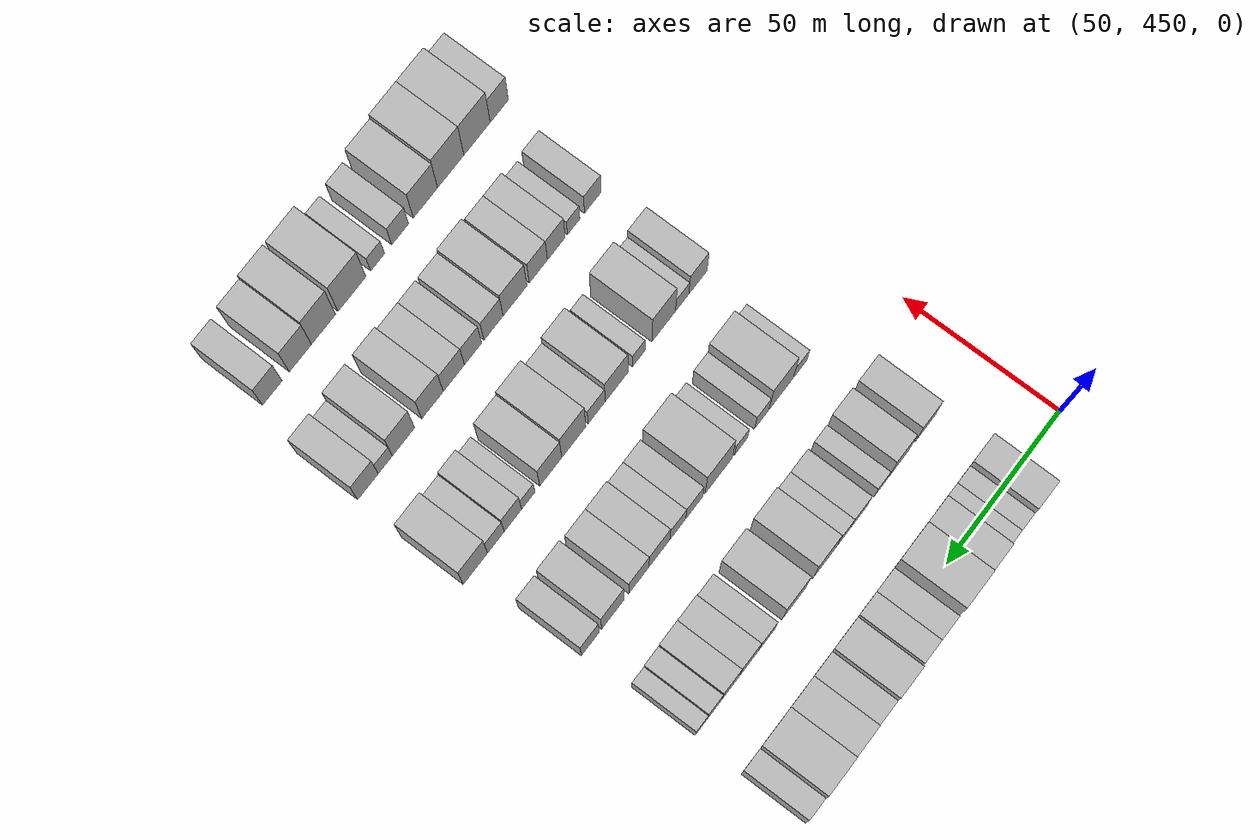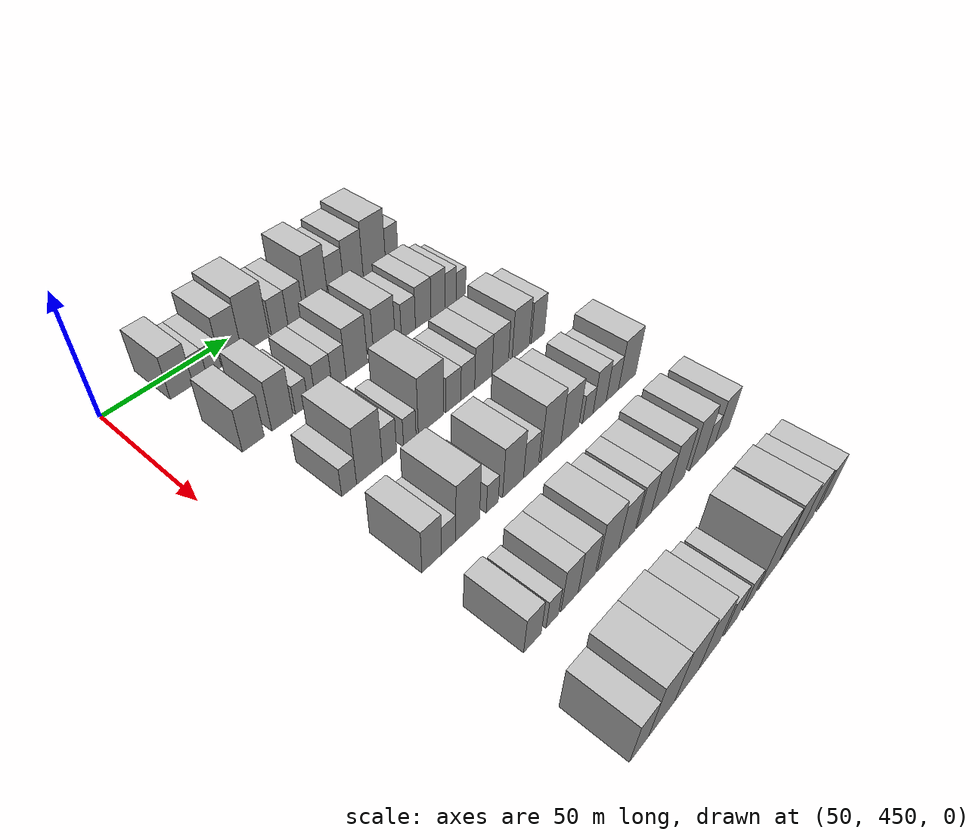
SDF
<sdf version="1.6">
 <world name="default">
  <model name="building_111">
   <static>1</static>
   <pose>50.0000 473.8093 0 0.000000 0.000000 0.000000</pose>
   <link name="link">
    <pose>0 0 9.00 0 0 0</pose>
    <collision name="collision"><geometry><box><size>20.0000 8.9700 18.0000</size></box></geometry></collision>
    <visual name="visual">
     <cast_shadows>0</cast_shadows>
     <geometry><box><size>20.0000 8.9700 18.0000</size></box></geometry>
     <material>
      <script>
       <uri>model://HANNAS_wall/materials/scripts</uri>
       <uri>model://HANNAS_wall/materials/textures</uri>
       <name>vrc/HANNAS_wall</name>
      </script>
     </material>
    </visual>
   </link>
  </model>
  <model name="building_112">
   <static>1</static>
   <pose>50.0000 481.0498 0 0.000000 0.000000 0.000000</pose>
   <link name="link">
    <pose>0 0 6.00 0 0 0</pose>
    <collision name="collision"><geometry><box><size>20.0000 5.5109 12.0000</size></box></geometry></collision>
    <visual name="visual">
     <cast_shadows>0</cast_shadows>
     <geometry><box><size>20.0000 5.5109 12.0000</size></box></geometry>
     <material>
      <script>
       <uri>model://HANNAS_wall/materials/scripts</uri>
       <uri>model://HANNAS_wall/materials/textures</uri>
       <name>vrc/HANNAS_wall</name>
      </script>
     </material>
    </visual>
   </link>
  </model>
  <model name="building_113">
   <static>1</static>
   <pose>50.0000 486.7842 0 0.000000 0.000000 0.000000</pose>
   <link name="link">
    <pose>0 0 6.00 0 0 0</pose>
    <collision name="collision"><geometry><box><size>20.0000 5.9581 12.0000</size></box></geometry></collision>
    <visual name="visual">
     <cast_shadows>0</cast_shadows>
     <geometry><box><size>20.0000 5.9581 12.0000</size></box></geometry>
     <material>
      <script>
       <uri>model://HANNAS_wall/materials/scripts</uri>
       <uri>model://HANNAS_wall/materials/textures</uri>
       <name>vrc/HANNAS_wall</name>
      </script>
     </material>
    </visual>
   </link>
  </model>
  <model name="building_114">
   <static>1</static>
   <pose>50.0000 494.1852 0 0.000000 0.000000 0.000000</pose>
   <link name="link">
    <pose>0 0 10.50 0 0 0</pose>
    <collision name="collision"><geometry><box><size>20.0000 8.8439 21.0000</size></box></geometry></collision>
    <visual name="visual">
     <cast_shadows>0</cast_shadows>
     <geometry><box><size>20.0000 8.8439 21.0000</size></box></geometry>
     <material>
      <script>
       <uri>model://HANNAS_wall/materials/scripts</uri>
       <uri>model://HANNAS_wall/materials/textures</uri>
       <name>vrc/HANNAS_wall</name>
      </script>
     </material>
    </visual>
   </link>
  </model>
  <model name="building_115">
   <static>1</static>
   <pose>50.0000 504.4781 0 0.000000 0.000000 0.000000</pose>
   <link name="link">
    <pose>0 0 12.00 0 0 0</pose>
    <collision name="collision"><geometry><box><size>20.0000 11.7419 24.0000</size></box></geometry></collision>
    <visual name="visual">
     <cast_shadows>0</cast_shadows>
     <geometry><box><size>20.0000 11.7419 24.0000</size></box></geometry>
     <material>
      <script>
       <uri>model://HANNAS_wall/materials/scripts</uri>
       <uri>model://HANNAS_wall/materials/textures</uri>
       <name>vrc/HANNAS_wall</name>
      </script>
     </material>
    </visual>
   </link>
  </model>
  <model name="building_116">
   <static>1</static>
   <pose>50.0000 515.0926 0 0.000000 0.000000 0.000000</pose>
   <link name="link">
    <pose>0 0 7.50 0 0 0</pose>
    <collision name="collision"><geometry><box><size>20.0000 7.4870 15.0000</size></box></geometry></collision>
    <visual name="visual">
     <cast_shadows>0</cast_shadows>
     <geometry><box><size>20.0000 7.4870 15.0000</size></box></geometry>
     <material>
      <script>
       <uri>model://HANNAS_wall/materials/scripts</uri>
       <uri>model://HANNAS_wall/materials/textures</uri>
       <name>vrc/HANNAS_wall</name>
      </script>
     </material>
    </visual>
   </link>
  </model>
  <model name="building_117">
   <static>1</static>
   <pose>50.0000 522.4957 0 0.000000 0.000000 0.000000</pose>
   <link name="link">
    <pose>0 0 7.50 0 0 0</pose>
    <collision name="collision"><geometry><box><size>20.0000 7.3192 15.0000</size></box></geometry></collision>
    <visual name="visual">
     <cast_shadows>0</cast_shadows>
     <geometry><box><size>20.0000 7.3192 15.0000</size></box></geometry>
     <material>
      <script>
       <uri>model://HANNAS_wall/materials/scripts</uri>
       <uri>model://HANNAS_wall/materials/textures</uri>
       <name>vrc/HANNAS_wall</name>
      </script>
     </material>
    </visual>
   </link>
  </model>
  <model name="building_118">
   <static>1</static>
   <pose>50.0000 533.0517 0 0.000000 0.000000 0.000000</pose>
   <link name="link">
    <pose>0 0 12.00 0 0 0</pose>
    <collision name="collision"><geometry><box><size>20.0000 9.7930 24.0000</size></box></geometry></collision>
    <visual name="visual">
     <cast_shadows>0</cast_shadows>
     <geometry><box><size>20.0000 9.7930 24.0000</size></box></geometry>
     <material>
      <script>
       <uri>model://HANNAS_wall/materials/scripts</uri>
       <uri>model://HANNAS_wall/materials/textures</uri>
       <name>vrc/HANNAS_wall</name>
      </script>
     </material>
    </visual>
   </link>
  </model>
  <model name="building_119">
   <static>1</static>
   <pose>50.0000 541.9042 0 0.000000 0.000000 0.000000</pose>
   <link name="link">
    <pose>0 0 9.00 0 0 0</pose>
    <collision name="collision"><geometry><box><size>20.0000 7.9119 18.0000</size></box></geometry></collision>
    <visual name="visual">
     <cast_shadows>0</cast_shadows>
     <geometry><box><size>20.0000 7.9119 18.0000</size></box></geometry>
     <material>
      <script>
       <uri>model://HANNAS_wall/materials/scripts</uri>
       <uri>model://HANNAS_wall/materials/textures</uri>
       <name>vrc/HANNAS_wall</name>
      </script>
     </material>
    </visual>
   </link>
  </model>
  <model name="building_120">
   <static>1</static>
   <pose>50.0000 550.7705 0 0.000000 0.000000 0.000000</pose>
   <link name="link">
    <pose>0 0 10.50 0 0 0</pose>
    <collision name="collision"><geometry><box><size>20.0000 9.8207 21.0000</size></box></geometry></collision>
    <visual name="visual">
     <cast_shadows>0</cast_shadows>
     <geometry><box><size>20.0000 9.8207 21.0000</size></box></geometry>
     <material>
      <script>
       <uri>model://HANNAS_wall/materials/scripts</uri>
       <uri>model://HANNAS_wall/materials/textures</uri>
       <name>vrc/HANNAS_wall</name>
      </script>
     </material>
    </visual>
   </link>
  </model>
  <model name="building_121">
   <static>1</static>
   <pose>50.0000 561.5727 0 0.000000 0.000000 0.000000</pose>
   <link name="link">
    <pose>0 0 12.00 0 0 0</pose>
    <collision name="collision"><geometry><box><size>20.0000 11.7837 24.0000</size></box></geometry></collision>
    <visual name="visual">
     <cast_shadows>0</cast_shadows>
     <geometry><box><size>20.0000 11.7837 24.0000</size></box></geometry>
     <material>
      <script>
       <uri>model://HANNAS_wall/materials/scripts</uri>
       <uri>model://HANNAS_wall/materials/textures</uri>
       <name>vrc/HANNAS_wall</name>
      </script>
     </material>
    </visual>
   </link>
  </model>
  <model name="building_122">
   <static>1</static>
   <pose>50.0000 570.8683 0 0.000000 0.000000 0.000000</pose>
   <link name="link">
    <pose>0 0 7.50 0 0 0</pose>
    <collision name="collision"><geometry><box><size>20.0000 6.8077 15.0000</size></box></geometry></collision>
    <visual name="visual">
     <cast_shadows>0</cast_shadows>
     <geometry><box><size>20.0000 6.8077 15.0000</size></box></geometry>
     <material>
      <script>
       <uri>model://HANNAS_wall/materials/scripts</uri>
       <uri>model://HANNAS_wall/materials/textures</uri>
       <name>vrc/HANNAS_wall</name>
      </script>
     </material>
    </visual>
   </link>
  </model>
  <model name="building_238">
   <static>1</static>
   <pose>85.0000 474.7445 0 0.000000 0.000000 0.000000</pose>
   <link name="link">
    <pose>0 0 9.00 0 0 0</pose>
    <collision name="collision"><geometry><box><size>20.0000 8.5558 18.0000</size></box></geometry></collision>
    <visual name="visual">
     <cast_shadows>0</cast_shadows>
     <geometry><box><size>20.0000 8.5558 18.0000</size></box></geometry>
     <material>
      <script>
       <uri>model://HANNAS_wall/materials/scripts</uri>
       <uri>model://HANNAS_wall/materials/textures</uri>
       <name>vrc/HANNAS_wall</name>
      </script>
     </material>
    </visual>
   </link>
  </model>
  <model name="building_239">
   <static>1</static>
   <pose>85.0000 486.3648 0 0.000000 0.000000 0.000000</pose>
   <link name="link">
    <pose>0 0 10.50 0 0 0</pose>
    <collision name="collision"><geometry><box><size>20.0000 8.6848 21.0000</size></box></geometry></collision>
    <visual name="visual">
     <cast_shadows>0</cast_shadows>
     <geometry><box><size>20.0000 8.6848 21.0000</size></box></geometry>
     <material>
      <script>
       <uri>model://HANNAS_wall/materials/scripts</uri>
       <uri>model://HANNAS_wall/materials/textures</uri>
       <name>vrc/HANNAS_wall</name>
      </script>
     </material>
    </visual>
   </link>
  </model>
  <model name="building_240">
   <static>1</static>
   <pose>85.0000 494.4536 0 0.000000 0.000000 0.000000</pose>
   <link name="link">
    <pose>0 0 6.00 0 0 0</pose>
    <collision name="collision"><geometry><box><size>20.0000 5.4927 12.0000</size></box></geometry></collision>
    <visual name="visual">
     <cast_shadows>0</cast_shadows>
     <geometry><box><size>20.0000 5.4927 12.0000</size></box></geometry>
     <material>
      <script>
       <uri>model://HANNAS_wall/materials/scripts</uri>
       <uri>model://HANNAS_wall/materials/textures</uri>
       <name>vrc/HANNAS_wall</name>
      </script>
     </material>
    </visual>
   </link>
  </model>
  <model name="building_241">
   <static>1</static>
   <pose>85.0000 503.8760 0 0.000000 0.000000 0.000000</pose>
   <link name="link">
    <pose>0 0 7.50 0 0 0</pose>
    <collision name="collision"><geometry><box><size>20.0000 7.3522 15.0000</size></box></geometry></collision>
    <visual name="visual">
     <cast_shadows>0</cast_shadows>
     <geometry><box><size>20.0000 7.3522 15.0000</size></box></geometry>
     <material>
      <script>
       <uri>model://HANNAS_wall/materials/scripts</uri>
       <uri>model://HANNAS_wall/materials/textures</uri>
       <name>vrc/HANNAS_wall</name>
      </script>
     </material>
    </visual>
   </link>
  </model>
  <model name="building_242">
   <static>1</static>
   <pose>85.0000 510.6443 0 0.000000 0.000000 0.000000</pose>
   <link name="link">
    <pose>0 0 7.50 0 0 0</pose>
    <collision name="collision"><geometry><box><size>20.0000 6.1843 15.0000</size></box></geometry></collision>
    <visual name="visual">
     <cast_shadows>0</cast_shadows>
     <geometry><box><size>20.0000 6.1843 15.0000</size></box></geometry>
     <material>
      <script>
       <uri>model://HANNAS_wall/materials/scripts</uri>
       <uri>model://HANNAS_wall/materials/textures</uri>
       <name>vrc/HANNAS_wall</name>
      </script>
     </material>
    </visual>
   </link>
  </model>
  <model name="building_243">
   <static>1</static>
   <pose>85.0000 518.6837 0 0.000000 0.000000 0.000000</pose>
   <link name="link">
    <pose>0 0 10.50 0 0 0</pose>
    <collision name="collision"><geometry><box><size>20.0000 9.8946 21.0000</size></box></geometry></collision>
    <visual name="visual">
     <cast_shadows>0</cast_shadows>
     <geometry><box><size>20.0000 9.8946 21.0000</size></box></geometry>
     <material>
      <script>
       <uri>model://HANNAS_wall/materials/scripts</uri>
       <uri>model://HANNAS_wall/materials/textures</uri>
       <name>vrc/HANNAS_wall</name>
      </script>
     </material>
    </visual>
   </link>
  </model>
  <model name="building_244">
   <static>1</static>
   <pose>85.0000 531.7463 0 0.000000 0.000000 0.000000</pose>
   <link name="link">
    <pose>0 0 10.50 0 0 0</pose>
    <collision name="collision"><geometry><box><size>20.0000 10.2304 21.0000</size></box></geometry></collision>
    <visual name="visual">
     <cast_shadows>0</cast_shadows>
     <geometry><box><size>20.0000 10.2304 21.0000</size></box></geometry>
     <material>
      <script>
       <uri>model://HANNAS_wall/materials/scripts</uri>
       <uri>model://HANNAS_wall/materials/textures</uri>
       <name>vrc/HANNAS_wall</name>
      </script>
     </material>
    </visual>
   </link>
  </model>
  <model name="building_245">
   <static>1</static>
   <pose>85.0000 543.3953 0 0.000000 0.000000 0.000000</pose>
   <link name="link">
    <pose>0 0 7.50 0 0 0</pose>
    <collision name="collision"><geometry><box><size>20.0000 7.0677 15.0000</size></box></geometry></collision>
    <visual name="visual">
     <cast_shadows>0</cast_shadows>
     <geometry><box><size>20.0000 7.0677 15.0000</size></box></geometry>
     <material>
      <script>
       <uri>model://HANNAS_wall/materials/scripts</uri>
       <uri>model://HANNAS_wall/materials/textures</uri>
       <name>vrc/HANNAS_wall</name>
      </script>
     </material>
    </visual>
   </link>
  </model>
  <model name="building_246">
   <static>1</static>
   <pose>85.0000 550.9207 0 0.000000 0.000000 0.000000</pose>
   <link name="link">
    <pose>0 0 9.00 0 0 0</pose>
    <collision name="collision"><geometry><box><size>20.0000 7.9831 18.0000</size></box></geometry></collision>
    <visual name="visual">
     <cast_shadows>0</cast_shadows>
     <geometry><box><size>20.0000 7.9831 18.0000</size></box></geometry>
     <material>
      <script>
       <uri>model://HANNAS_wall/materials/scripts</uri>
       <uri>model://HANNAS_wall/materials/textures</uri>
       <name>vrc/HANNAS_wall</name>
      </script>
     </material>
    </visual>
   </link>
  </model>
  <model name="building_247">
   <static>1</static>
   <pose>85.0000 558.6906 0 0.000000 0.000000 0.000000</pose>
   <link name="link">
    <pose>0 0 9.00 0 0 0</pose>
    <collision name="collision"><geometry><box><size>20.0000 7.5567 18.0000</size></box></geometry></collision>
    <visual name="visual">
     <cast_shadows>0</cast_shadows>
     <geometry><box><size>20.0000 7.5567 18.0000</size></box></geometry>
     <material>
      <script>
       <uri>model://HANNAS_wall/materials/scripts</uri>
       <uri>model://HANNAS_wall/materials/textures</uri>
       <name>vrc/HANNAS_wall</name>
      </script>
     </material>
    </visual>
   </link>
  </model>
  <model name="building_248">
   <static>1</static>
   <pose>85.0000 565.4877 0 0.000000 0.000000 0.000000</pose>
   <link name="link">
    <pose>0 0 7.50 0 0 0</pose>
    <collision name="collision"><geometry><box><size>20.0000 6.0374 15.0000</size></box></geometry></collision>
    <visual name="visual">
     <cast_shadows>0</cast_shadows>
     <geometry><box><size>20.0000 6.0374 15.0000</size></box></geometry>
     <material>
      <script>
       <uri>model://HANNAS_wall/materials/scripts</uri>
       <uri>model://HANNAS_wall/materials/textures</uri>
       <name>vrc/HANNAS_wall</name>
      </script>
     </material>
    </visual>
   </link>
  </model>
  <model name="building_249">
   <static>1</static>
   <pose>85.0000 571.0197 0 0.000000 0.000000 0.000000</pose>
   <link name="link">
    <pose>0 0 6.00 0 0 0</pose>
    <collision name="collision"><geometry><box><size>20.0000 5.0265 12.0000</size></box></geometry></collision>
    <visual name="visual">
     <cast_shadows>0</cast_shadows>
     <geometry><box><size>20.0000 5.0265 12.0000</size></box></geometry>
     <material>
      <script>
       <uri>model://HANNAS_wall/materials/scripts</uri>
       <uri>model://HANNAS_wall/materials/textures</uri>
       <name>vrc/HANNAS_wall</name>
      </script>
     </material>
    </visual>
   </link>
  </model>
  <model name="building_366">
   <static>1</static>
   <pose>120.0000 481.7213 0 0.000000 0.000000 0.000000</pose>
   <link name="link">
    <pose>0 0 6.00 0 0 0</pose>
    <collision name="collision"><geometry><box><size>20.0000 5.9774 12.0000</size></box></geometry></collision>
    <visual name="visual">
     <cast_shadows>0</cast_shadows>
     <geometry><box><size>20.0000 5.9774 12.0000</size></box></geometry>
     <material>
      <script>
       <uri>model://HANNAS_wall/materials/scripts</uri>
       <uri>model://HANNAS_wall/materials/textures</uri>
       <name>vrc/HANNAS_wall</name>
      </script>
     </material>
    </visual>
   </link>
  </model>
  <model name="building_367">
   <static>1</static>
   <pose>120.0000 490.0449 0 0.000000 0.000000 0.000000</pose>
   <link name="link">
    <pose>0 0 12.00 0 0 0</pose>
    <collision name="collision"><geometry><box><size>20.0000 10.6699 24.0000</size></box></geometry></collision>
    <visual name="visual">
     <cast_shadows>0</cast_shadows>
     <geometry><box><size>20.0000 10.6699 24.0000</size></box></geometry>
     <material>
      <script>
       <uri>model://HANNAS_wall/materials/scripts</uri>
       <uri>model://HANNAS_wall/materials/textures</uri>
       <name>vrc/HANNAS_wall</name>
      </script>
     </material>
    </visual>
   </link>
  </model>
  <model name="building_368">
   <static>1</static>
   <pose>120.0000 498.4522 0 0.000000 0.000000 0.000000</pose>
   <link name="link">
    <pose>0 0 7.50 0 0 0</pose>
    <collision name="collision"><geometry><box><size>20.0000 6.1448 15.0000</size></box></geometry></collision>
    <visual name="visual">
     <cast_shadows>0</cast_shadows>
     <geometry><box><size>20.0000 6.1448 15.0000</size></box></geometry>
     <material>
      <script>
       <uri>model://HANNAS_wall/materials/scripts</uri>
       <uri>model://HANNAS_wall/materials/textures</uri>
       <name>vrc/HANNAS_wall</name>
      </script>
     </material>
    </visual>
   </link>
  </model>
  <model name="building_369">
   <static>1</static>
   <pose>120.0000 507.3037 0 0.000000 0.000000 0.000000</pose>
   <link name="link">
    <pose>0 0 6.00 0 0 0</pose>
    <collision name="collision"><geometry><box><size>20.0000 5.5582 12.0000</size></box></geometry></collision>
    <visual name="visual">
     <cast_shadows>0</cast_shadows>
     <geometry><box><size>20.0000 5.5582 12.0000</size></box></geometry>
     <material>
      <script>
       <uri>model://HANNAS_wall/materials/scripts</uri>
       <uri>model://HANNAS_wall/materials/textures</uri>
       <name>vrc/HANNAS_wall</name>
      </script>
     </material>
    </visual>
   </link>
  </model>
  <model name="building_370">
   <static>1</static>
   <pose>120.0000 516.9435 0 0.000000 0.000000 0.000000</pose>
   <link name="link">
    <pose>0 0 12.00 0 0 0</pose>
    <collision name="collision"><geometry><box><size>20.0000 11.7212 24.0000</size></box></geometry></collision>
    <visual name="visual">
     <cast_shadows>0</cast_shadows>
     <geometry><box><size>20.0000 11.7212 24.0000</size></box></geometry>
     <material>
      <script>
       <uri>model://HANNAS_wall/materials/scripts</uri>
       <uri>model://HANNAS_wall/materials/textures</uri>
       <name>vrc/HANNAS_wall</name>
      </script>
     </material>
    </visual>
   </link>
  </model>
  <model name="building_371">
   <static>1</static>
   <pose>120.0000 527.3987 0 0.000000 0.000000 0.000000</pose>
   <link name="link">
    <pose>0 0 7.50 0 0 0</pose>
    <collision name="collision"><geometry><box><size>20.0000 7.1892 15.0000</size></box></geometry></collision>
    <visual name="visual">
     <cast_shadows>0</cast_shadows>
     <geometry><box><size>20.0000 7.1892 15.0000</size></box></geometry>
     <material>
      <script>
       <uri>model://HANNAS_wall/materials/scripts</uri>
       <uri>model://HANNAS_wall/materials/textures</uri>
       <name>vrc/HANNAS_wall</name>
      </script>
     </material>
    </visual>
   </link>
  </model>
  <model name="building_372">
   <static>1</static>
   <pose>120.0000 534.3776 0 0.000000 0.000000 0.000000</pose>
   <link name="link">
    <pose>0 0 7.50 0 0 0</pose>
    <collision name="collision"><geometry><box><size>20.0000 6.7687 15.0000</size></box></geometry></collision>
    <visual name="visual">
     <cast_shadows>0</cast_shadows>
     <geometry><box><size>20.0000 6.7687 15.0000</size></box></geometry>
     <material>
      <script>
       <uri>model://HANNAS_wall/materials/scripts</uri>
       <uri>model://HANNAS_wall/materials/textures</uri>
       <name>vrc/HANNAS_wall</name>
      </script>
     </material>
    </visual>
   </link>
  </model>
  <model name="building_373">
   <static>1</static>
   <pose>120.0000 542.1660 0 0.000000 0.000000 0.000000</pose>
   <link name="link">
    <pose>0 0 9.00 0 0 0</pose>
    <collision name="collision"><geometry><box><size>20.0000 8.8082 18.0000</size></box></geometry></collision>
    <visual name="visual">
     <cast_shadows>0</cast_shadows>
     <geometry><box><size>20.0000 8.8082 18.0000</size></box></geometry>
     <material>
      <script>
       <uri>model://HANNAS_wall/materials/scripts</uri>
       <uri>model://HANNAS_wall/materials/textures</uri>
       <name>vrc/HANNAS_wall</name>
      </script>
     </material>
    </visual>
   </link>
  </model>
  <model name="building_374">
   <static>1</static>
   <pose>120.0000 550.8301 0 0.000000 0.000000 0.000000</pose>
   <link name="link">
    <pose>0 0 9.00 0 0 0</pose>
    <collision name="collision"><geometry><box><size>20.0000 8.5200 18.0000</size></box></geometry></collision>
    <visual name="visual">
     <cast_shadows>0</cast_shadows>
     <geometry><box><size>20.0000 8.5200 18.0000</size></box></geometry>
     <material>
      <script>
       <uri>model://HANNAS_wall/materials/scripts</uri>
       <uri>model://HANNAS_wall/materials/textures</uri>
       <name>vrc/HANNAS_wall</name>
      </script>
     </material>
    </visual>
   </link>
  </model>
  <model name="building_375">
   <static>1</static>
   <pose>120.0000 561.7820 0 0.000000 0.000000 0.000000</pose>
   <link name="link">
    <pose>0 0 10.50 0 0 0</pose>
    <collision name="collision"><geometry><box><size>20.0000 9.3837 21.0000</size></box></geometry></collision>
    <visual name="visual">
     <cast_shadows>0</cast_shadows>
     <geometry><box><size>20.0000 9.3837 21.0000</size></box></geometry>
     <material>
      <script>
       <uri>model://HANNAS_wall/materials/scripts</uri>
       <uri>model://HANNAS_wall/materials/textures</uri>
       <name>vrc/HANNAS_wall</name>
      </script>
     </material>
    </visual>
   </link>
  </model>
  <model name="building_376">
   <static>1</static>
   <pose>120.0000 571.1897 0 0.000000 0.000000 0.000000</pose>
   <link name="link">
    <pose>0 0 9.00 0 0 0</pose>
    <collision name="collision"><geometry><box><size>20.0000 7.4317 18.0000</size></box></geometry></collision>
    <visual name="visual">
     <cast_shadows>0</cast_shadows>
     <geometry><box><size>20.0000 7.4317 18.0000</size></box></geometry>
     <material>
      <script>
       <uri>model://HANNAS_wall/materials/scripts</uri>
       <uri>model://HANNAS_wall/materials/textures</uri>
       <name>vrc/HANNAS_wall</name>
      </script>
     </material>
    </visual>
   </link>
  </model>
  <model name="building_488">
   <static>1</static>
   <pose>155.0000 479.0976 0 0.000000 0.000000 0.000000</pose>
   <link name="link">
    <pose>0 0 9.00 0 0 0</pose>
    <collision name="collision"><geometry><box><size>20.0000 7.8848 18.0000</size></box></geometry></collision>
    <visual name="visual">
     <cast_shadows>0</cast_shadows>
     <geometry><box><size>20.0000 7.8848 18.0000</size></box></geometry>
     <material>
      <script>
       <uri>model://HANNAS_wall/materials/scripts</uri>
       <uri>model://HANNAS_wall/materials/textures</uri>
       <name>vrc/HANNAS_wall</name>
      </script>
     </material>
    </visual>
   </link>
  </model>
  <model name="building_489">
   <static>1</static>
   <pose>155.0000 485.9441 0 0.000000 0.000000 0.000000</pose>
   <link name="link">
    <pose>0 0 6.00 0 0 0</pose>
    <collision name="collision"><geometry><box><size>20.0000 5.8082 12.0000</size></box></geometry></collision>
    <visual name="visual">
     <cast_shadows>0</cast_shadows>
     <geometry><box><size>20.0000 5.8082 12.0000</size></box></geometry>
     <material>
      <script>
       <uri>model://HANNAS_wall/materials/scripts</uri>
       <uri>model://HANNAS_wall/materials/textures</uri>
       <name>vrc/HANNAS_wall</name>
      </script>
     </material>
    </visual>
   </link>
  </model>
  <model name="building_490">
   <static>1</static>
   <pose>155.0000 493.9385 0 0.000000 0.000000 0.000000</pose>
   <link name="link">
    <pose>0 0 12.00 0 0 0</pose>
    <collision name="collision"><geometry><box><size>20.0000 10.1805 24.0000</size></box></geometry></collision>
    <visual name="visual">
     <cast_shadows>0</cast_shadows>
     <geometry><box><size>20.0000 10.1805 24.0000</size></box></geometry>
     <material>
      <script>
       <uri>model://HANNAS_wall/materials/scripts</uri>
       <uri>model://HANNAS_wall/materials/textures</uri>
       <name>vrc/HANNAS_wall</name>
      </script>
     </material>
    </visual>
   </link>
  </model>
  <model name="building_491">
   <static>1</static>
   <pose>155.0000 504.6918 0 0.000000 0.000000 0.000000</pose>
   <link name="link">
    <pose>0 0 6.00 0 0 0</pose>
    <collision name="collision"><geometry><box><size>20.0000 5.3261 12.0000</size></box></geometry></collision>
    <visual name="visual">
     <cast_shadows>0</cast_shadows>
     <geometry><box><size>20.0000 5.3261 12.0000</size></box></geometry>
     <material>
      <script>
       <uri>model://HANNAS_wall/materials/scripts</uri>
       <uri>model://HANNAS_wall/materials/textures</uri>
       <name>vrc/HANNAS_wall</name>
      </script>
     </material>
    </visual>
   </link>
  </model>
  <model name="building_492">
   <static>1</static>
   <pose>155.0000 514.2028 0 0.000000 0.000000 0.000000</pose>
   <link name="link">
    <pose>0 0 10.50 0 0 0</pose>
    <collision name="collision"><geometry><box><size>20.0000 9.6958 21.0000</size></box></geometry></collision>
    <visual name="visual">
     <cast_shadows>0</cast_shadows>
     <geometry><box><size>20.0000 9.6958 21.0000</size></box></geometry>
     <material>
      <script>
       <uri>model://HANNAS_wall/materials/scripts</uri>
       <uri>model://HANNAS_wall/materials/textures</uri>
       <name>vrc/HANNAS_wall</name>
      </script>
     </material>
    </visual>
   </link>
  </model>
  <model name="building_493">
   <static>1</static>
   <pose>155.0000 522.6697 0 0.000000 0.000000 0.000000</pose>
   <link name="link">
    <pose>0 0 7.50 0 0 0</pose>
    <collision name="collision"><geometry><box><size>20.0000 7.2380 15.0000</size></box></geometry></collision>
    <visual name="visual">
     <cast_shadows>0</cast_shadows>
     <geometry><box><size>20.0000 7.2380 15.0000</size></box></geometry>
     <material>
      <script>
       <uri>model://HANNAS_wall/materials/scripts</uri>
       <uri>model://HANNAS_wall/materials/textures</uri>
       <name>vrc/HANNAS_wall</name>
      </script>
     </material>
    </visual>
   </link>
  </model>
  <model name="building_494">
   <static>1</static>
   <pose>155.0000 532.3673 0 0.000000 0.000000 0.000000</pose>
   <link name="link">
    <pose>0 0 12.00 0 0 0</pose>
    <collision name="collision"><geometry><box><size>20.0000 10.1572 24.0000</size></box></geometry></collision>
    <visual name="visual">
     <cast_shadows>0</cast_shadows>
     <geometry><box><size>20.0000 10.1572 24.0000</size></box></geometry>
     <material>
      <script>
       <uri>model://HANNAS_wall/materials/scripts</uri>
       <uri>model://HANNAS_wall/materials/textures</uri>
       <name>vrc/HANNAS_wall</name>
      </script>
     </material>
    </visual>
   </link>
  </model>
  <model name="building_495">
   <static>1</static>
   <pose>155.0000 542.0922 0 0.000000 0.000000 0.000000</pose>
   <link name="link">
    <pose>0 0 10.50 0 0 0</pose>
    <collision name="collision"><geometry><box><size>20.0000 9.2925 21.0000</size></box></geometry></collision>
    <visual name="visual">
     <cast_shadows>0</cast_shadows>
     <geometry><box><size>20.0000 9.2925 21.0000</size></box></geometry>
     <material>
      <script>
       <uri>model://HANNAS_wall/materials/scripts</uri>
       <uri>model://HANNAS_wall/materials/textures</uri>
       <name>vrc/HANNAS_wall</name>
      </script>
     </material>
    </visual>
   </link>
  </model>
  <model name="building_496">
   <static>1</static>
   <pose>155.0000 551.5436 0 0.000000 0.000000 0.000000</pose>
   <link name="link">
    <pose>0 0 6.00 0 0 0</pose>
    <collision name="collision"><geometry><box><size>20.0000 5.6103 12.0000</size></box></geometry></collision>
    <visual name="visual">
     <cast_shadows>0</cast_shadows>
     <geometry><box><size>20.0000 5.6103 12.0000</size></box></geometry>
     <material>
      <script>
       <uri>model://HANNAS_wall/materials/scripts</uri>
       <uri>model://HANNAS_wall/materials/textures</uri>
       <name>vrc/HANNAS_wall</name>
      </script>
     </material>
    </visual>
   </link>
  </model>
  <model name="building_497">
   <static>1</static>
   <pose>155.0000 557.9763 0 0.000000 0.000000 0.000000</pose>
   <link name="link">
    <pose>0 0 9.00 0 0 0</pose>
    <collision name="collision"><geometry><box><size>20.0000 7.2551 18.0000</size></box></geometry></collision>
    <visual name="visual">
     <cast_shadows>0</cast_shadows>
     <geometry><box><size>20.0000 7.2551 18.0000</size></box></geometry>
     <material>
      <script>
       <uri>model://HANNAS_wall/materials/scripts</uri>
       <uri>model://HANNAS_wall/materials/textures</uri>
       <name>vrc/HANNAS_wall</name>
      </script>
     </material>
    </visual>
   </link>
  </model>
  <model name="building_498">
   <static>1</static>
   <pose>155.0000 565.0792 0 0.000000 0.000000 0.000000</pose>
   <link name="link">
    <pose>0 0 7.50 0 0 0</pose>
    <collision name="collision"><geometry><box><size>20.0000 6.9506 15.0000</size></box></geometry></collision>
    <visual name="visual">
     <cast_shadows>0</cast_shadows>
     <geometry><box><size>20.0000 6.9506 15.0000</size></box></geometry>
     <material>
      <script>
       <uri>model://HANNAS_wall/materials/scripts</uri>
       <uri>model://HANNAS_wall/materials/textures</uri>
       <name>vrc/HANNAS_wall</name>
      </script>
     </material>
    </visual>
   </link>
  </model>
  <model name="building_499">
   <static>1</static>
   <pose>155.0000 573.5994 0 0.000000 0.000000 0.000000</pose>
   <link name="link">
    <pose>0 0 10.50 0 0 0</pose>
    <collision name="collision"><geometry><box><size>20.0000 10.0900 21.0000</size></box></geometry></collision>
    <visual name="visual">
     <cast_shadows>0</cast_shadows>
     <geometry><box><size>20.0000 10.0900 21.0000</size></box></geometry>
     <material>
      <script>
       <uri>model://HANNAS_wall/materials/scripts</uri>
       <uri>model://HANNAS_wall/materials/textures</uri>
       <name>vrc/HANNAS_wall</name>
      </script>
     </material>
    </visual>
   </link>
  </model>
  <model name="building_620">
   <static>1</static>
   <pose>190.0000 478.4909 0 0.000000 0.000000 0.000000</pose>
   <link name="link">
    <pose>0 0 7.50 0 0 0</pose>
    <collision name="collision"><geometry><box><size>20.0000 7.1907 15.0000</size></box></geometry></collision>
    <visual name="visual">
     <cast_shadows>0</cast_shadows>
     <geometry><box><size>20.0000 7.1907 15.0000</size></box></geometry>
     <material>
      <script>
       <uri>model://HANNAS_wall/materials/scripts</uri>
       <uri>model://HANNAS_wall/materials/textures</uri>
       <name>vrc/HANNAS_wall</name>
      </script>
     </material>
    </visual>
   </link>
  </model>
  <model name="building_621">
   <static>1</static>
   <pose>190.0000 486.7573 0 0.000000 0.000000 0.000000</pose>
   <link name="link">
    <pose>0 0 6.00 0 0 0</pose>
    <collision name="collision"><geometry><box><size>20.0000 5.3423 12.0000</size></box></geometry></collision>
    <visual name="visual">
     <cast_shadows>0</cast_shadows>
     <geometry><box><size>20.0000 5.3423 12.0000</size></box></geometry>
     <material>
      <script>
       <uri>model://HANNAS_wall/materials/scripts</uri>
       <uri>model://HANNAS_wall/materials/textures</uri>
       <name>vrc/HANNAS_wall</name>
      </script>
     </material>
    </visual>
   </link>
  </model>
  <model name="building_622">
   <static>1</static>
   <pose>190.0000 494.2235 0 0.000000 0.000000 0.000000</pose>
   <link name="link">
    <pose>0 0 9.00 0 0 0</pose>
    <collision name="collision"><geometry><box><size>20.0000 7.5900 18.0000</size></box></geometry></collision>
    <visual name="visual">
     <cast_shadows>0</cast_shadows>
     <geometry><box><size>20.0000 7.5900 18.0000</size></box></geometry>
     <material>
      <script>
       <uri>model://HANNAS_wall/materials/scripts</uri>
       <uri>model://HANNAS_wall/materials/textures</uri>
       <name>vrc/HANNAS_wall</name>
      </script>
     </material>
    </visual>
   </link>
  </model>
  <model name="building_623">
   <static>1</static>
   <pose>190.0000 501.9010 0 0.000000 0.000000 0.000000</pose>
   <link name="link">
    <pose>0 0 9.00 0 0 0</pose>
    <collision name="collision"><geometry><box><size>20.0000 7.7650 18.0000</size></box></geometry></collision>
    <visual name="visual">
     <cast_shadows>0</cast_shadows>
     <geometry><box><size>20.0000 7.7650 18.0000</size></box></geometry>
     <material>
      <script>
       <uri>model://HANNAS_wall/materials/scripts</uri>
       <uri>model://HANNAS_wall/materials/textures</uri>
       <name>vrc/HANNAS_wall</name>
      </script>
     </material>
    </visual>
   </link>
  </model>
  <model name="building_624">
   <static>1</static>
   <pose>190.0000 511.8638 0 0.000000 0.000000 0.000000</pose>
   <link name="link">
    <pose>0 0 10.50 0 0 0</pose>
    <collision name="collision"><geometry><box><size>20.0000 10.1606 21.0000</size></box></geometry></collision>
    <visual name="visual">
     <cast_shadows>0</cast_shadows>
     <geometry><box><size>20.0000 10.1606 21.0000</size></box></geometry>
     <material>
      <script>
       <uri>model://HANNAS_wall/materials/scripts</uri>
       <uri>model://HANNAS_wall/materials/textures</uri>
       <name>vrc/HANNAS_wall</name>
      </script>
     </material>
    </visual>
   </link>
  </model>
  <model name="building_625">
   <static>1</static>
   <pose>190.0000 520.9968 0 0.000000 0.000000 0.000000</pose>
   <link name="link">
    <pose>0 0 9.00 0 0 0</pose>
    <collision name="collision"><geometry><box><size>20.0000 8.1053 18.0000</size></box></geometry></collision>
    <visual name="visual">
     <cast_shadows>0</cast_shadows>
     <geometry><box><size>20.0000 8.1053 18.0000</size></box></geometry>
     <material>
      <script>
       <uri>model://HANNAS_wall/materials/scripts</uri>
       <uri>model://HANNAS_wall/materials/textures</uri>
       <name>vrc/HANNAS_wall</name>
      </script>
     </material>
    </visual>
   </link>
  </model>
  <model name="building_626">
   <static>1</static>
   <pose>190.0000 529.6691 0 0.000000 0.000000 0.000000</pose>
   <link name="link">
    <pose>0 0 9.00 0 0 0</pose>
    <collision name="collision"><geometry><box><size>20.0000 7.2393 18.0000</size></box></geometry></collision>
    <visual name="visual">
     <cast_shadows>0</cast_shadows>
     <geometry><box><size>20.0000 7.2393 18.0000</size></box></geometry>
     <material>
      <script>
       <uri>model://HANNAS_wall/materials/scripts</uri>
       <uri>model://HANNAS_wall/materials/textures</uri>
       <name>vrc/HANNAS_wall</name>
      </script>
     </material>
    </visual>
   </link>
  </model>
  <model name="building_627">
   <static>1</static>
   <pose>190.0000 537.7356 0 0.000000 0.000000 0.000000</pose>
   <link name="link">
    <pose>0 0 9.00 0 0 0</pose>
    <collision name="collision"><geometry><box><size>20.0000 8.8938 18.0000</size></box></geometry></collision>
    <visual name="visual">
     <cast_shadows>0</cast_shadows>
     <geometry><box><size>20.0000 8.8938 18.0000</size></box></geometry>
     <material>
      <script>
       <uri>model://HANNAS_wall/materials/scripts</uri>
       <uri>model://HANNAS_wall/materials/textures</uri>
       <name>vrc/HANNAS_wall</name>
      </script>
     </material>
    </visual>
   </link>
  </model>
  <model name="building_628">
   <static>1</static>
   <pose>190.0000 546.6750 0 0.000000 0.000000 0.000000</pose>
   <link name="link">
    <pose>0 0 10.50 0 0 0</pose>
    <collision name="collision"><geometry><box><size>20.0000 8.9852 21.0000</size></box></geometry></collision>
    <visual name="visual">
     <cast_shadows>0</cast_shadows>
     <geometry><box><size>20.0000 8.9852 21.0000</size></box></geometry>
     <material>
      <script>
       <uri>model://HANNAS_wall/materials/scripts</uri>
       <uri>model://HANNAS_wall/materials/textures</uri>
       <name>vrc/HANNAS_wall</name>
      </script>
     </material>
    </visual>
   </link>
  </model>
  <model name="building_629">
   <static>1</static>
   <pose>190.0000 558.8014 0 0.000000 0.000000 0.000000</pose>
   <link name="link">
    <pose>0 0 10.50 0 0 0</pose>
    <collision name="collision"><geometry><box><size>20.0000 9.2676 21.0000</size></box></geometry></collision>
    <visual name="visual">
     <cast_shadows>0</cast_shadows>
     <geometry><box><size>20.0000 9.2676 21.0000</size></box></geometry>
     <material>
      <script>
       <uri>model://HANNAS_wall/materials/scripts</uri>
       <uri>model://HANNAS_wall/materials/textures</uri>
       <name>vrc/HANNAS_wall</name>
      </script>
     </material>
    </visual>
   </link>
  </model>
  <model name="building_630">
   <static>1</static>
   <pose>190.0000 566.3695 0 0.000000 0.000000 0.000000</pose>
   <link name="link">
    <pose>0 0 6.00 0 0 0</pose>
    <collision name="collision"><geometry><box><size>20.0000 5.8686 12.0000</size></box></geometry></collision>
    <visual name="visual">
     <cast_shadows>0</cast_shadows>
     <geometry><box><size>20.0000 5.8686 12.0000</size></box></geometry>
     <material>
      <script>
       <uri>model://HANNAS_wall/materials/scripts</uri>
       <uri>model://HANNAS_wall/materials/textures</uri>
       <name>vrc/HANNAS_wall</name>
      </script>
     </material>
    </visual>
   </link>
  </model>
  <model name="building_631">
   <static>1</static>
   <pose>190.0000 573.5351 0 0.000000 0.000000 0.000000</pose>
   <link name="link">
    <pose>0 0 9.00 0 0 0</pose>
    <collision name="collision"><geometry><box><size>20.0000 8.4627 18.0000</size></box></geometry></collision>
    <visual name="visual">
     <cast_shadows>0</cast_shadows>
     <geometry><box><size>20.0000 8.4627 18.0000</size></box></geometry>
     <material>
      <script>
       <uri>model://HANNAS_wall/materials/scripts</uri>
       <uri>model://HANNAS_wall/materials/textures</uri>
       <name>vrc/HANNAS_wall</name>
      </script>
     </material>
    </visual>
   </link>
  </model>
  <model name="building_744">
   <static>1</static>
   <pose>225.0000 473.4407 0 0.000000 0.000000 0.000000</pose>
   <link name="link">
    <pose>0 0 9.00 0 0 0</pose>
    <collision name="collision"><geometry><box><size>20.0000 7.8440 18.0000</size></box></geometry></collision>
    <visual name="visual">
     <cast_shadows>0</cast_shadows>
     <geometry><box><size>20.0000 7.8440 18.0000</size></box></geometry>
     <material>
      <script>
       <uri>model://HANNAS_wall/materials/scripts</uri>
       <uri>model://HANNAS_wall/materials/textures</uri>
       <name>vrc/HANNAS_wall</name>
      </script>
     </material>
    </visual>
   </link>
  </model>
  <model name="building_745">
   <static>1</static>
   <pose>225.0000 483.0307 0 0.000000 0.000000 0.000000</pose>
   <link name="link">
    <pose>0 0 12.00 0 0 0</pose>
    <collision name="collision"><geometry><box><size>20.0000 11.3360 24.0000</size></box></geometry></collision>
    <visual name="visual">
     <cast_shadows>0</cast_shadows>
     <geometry><box><size>20.0000 11.3360 24.0000</size></box></geometry>
     <material>
      <script>
       <uri>model://HANNAS_wall/materials/scripts</uri>
       <uri>model://HANNAS_wall/materials/textures</uri>
       <name>vrc/HANNAS_wall</name>
      </script>
     </material>
    </visual>
   </link>
  </model>
  <model name="building_746">
   <static>1</static>
   <pose>225.0000 494.3254 0 0.000000 0.000000 0.000000</pose>
   <link name="link">
    <pose>0 0 12.00 0 0 0</pose>
    <collision name="collision"><geometry><box><size>20.0000 11.2534 24.0000</size></box></geometry></collision>
    <visual name="visual">
     <cast_shadows>0</cast_shadows>
     <geometry><box><size>20.0000 11.2534 24.0000</size></box></geometry>
     <material>
      <script>
       <uri>model://HANNAS_wall/materials/scripts</uri>
       <uri>model://HANNAS_wall/materials/textures</uri>
       <name>vrc/HANNAS_wall</name>
      </script>
     </material>
    </visual>
   </link>
  </model>
  <model name="building_747">
   <static>1</static>
   <pose>225.0000 505.1048 0 0.000000 0.000000 0.000000</pose>
   <link name="link">
    <pose>0 0 10.50 0 0 0</pose>
    <collision name="collision"><geometry><box><size>20.0000 10.3055 21.0000</size></box></geometry></collision>
    <visual name="visual">
     <cast_shadows>0</cast_shadows>
     <geometry><box><size>20.0000 10.3055 21.0000</size></box></geometry>
     <material>
      <script>
       <uri>model://HANNAS_wall/materials/scripts</uri>
       <uri>model://HANNAS_wall/materials/textures</uri>
       <name>vrc/HANNAS_wall</name>
      </script>
     </material>
    </visual>
   </link>
  </model>
  <model name="building_748">
   <static>1</static>
   <pose>225.0000 515.8275 0 0.000000 0.000000 0.000000</pose>
   <link name="link">
    <pose>0 0 7.50 0 0 0</pose>
    <collision name="collision"><geometry><box><size>20.0000 7.1398 15.0000</size></box></geometry></collision>
    <visual name="visual">
     <cast_shadows>0</cast_shadows>
     <geometry><box><size>20.0000 7.1398 15.0000</size></box></geometry>
     <material>
      <script>
       <uri>model://HANNAS_wall/materials/scripts</uri>
       <uri>model://HANNAS_wall/materials/textures</uri>
       <name>vrc/HANNAS_wall</name>
      </script>
     </material>
    </visual>
   </link>
  </model>
  <model name="building_749">
   <static>1</static>
   <pose>225.0000 525.3303 0 0.000000 0.000000 0.000000</pose>
   <link name="link">
    <pose>0 0 6.00 0 0 0</pose>
    <collision name="collision"><geometry><box><size>20.0000 5.8657 12.0000</size></box></geometry></collision>
    <visual name="visual">
     <cast_shadows>0</cast_shadows>
     <geometry><box><size>20.0000 5.8657 12.0000</size></box></geometry>
     <material>
      <script>
       <uri>model://HANNAS_wall/materials/scripts</uri>
       <uri>model://HANNAS_wall/materials/textures</uri>
       <name>vrc/HANNAS_wall</name>
      </script>
     </material>
    </visual>
   </link>
  </model>
  <model name="building_750">
   <static>1</static>
   <pose>225.0000 536.0957 0 0.000000 0.000000 0.000000</pose>
   <link name="link">
    <pose>0 0 12.00 0 0 0</pose>
    <collision name="collision"><geometry><box><size>20.0000 11.6652 24.0000</size></box></geometry></collision>
    <visual name="visual">
     <cast_shadows>0</cast_shadows>
     <geometry><box><size>20.0000 11.6652 24.0000</size></box></geometry>
     <material>
      <script>
       <uri>model://HANNAS_wall/materials/scripts</uri>
       <uri>model://HANNAS_wall/materials/textures</uri>
       <name>vrc/HANNAS_wall</name>
      </script>
     </material>
    </visual>
   </link>
  </model>
  <model name="building_751">
   <static>1</static>
   <pose>225.0000 547.9777 0 0.000000 0.000000 0.000000</pose>
   <link name="link">
    <pose>0 0 12.00 0 0 0</pose>
    <collision name="collision"><geometry><box><size>20.0000 10.0989 24.0000</size></box></geometry></collision>
    <visual name="visual">
     <cast_shadows>0</cast_shadows>
     <geometry><box><size>20.0000 10.0989 24.0000</size></box></geometry>
     <material>
      <script>
       <uri>model://HANNAS_wall/materials/scripts</uri>
       <uri>model://HANNAS_wall/materials/textures</uri>
       <name>vrc/HANNAS_wall</name>
      </script>
     </material>
    </visual>
   </link>
  </model>
  <model name="building_752">
   <static>1</static>
   <pose>225.0000 557.6006 0 0.000000 0.000000 0.000000</pose>
   <link name="link">
    <pose>0 0 10.50 0 0 0</pose>
    <collision name="collision"><geometry><box><size>20.0000 9.1470 21.0000</size></box></geometry></collision>
    <visual name="visual">
     <cast_shadows>0</cast_shadows>
     <geometry><box><size>20.0000 9.1470 21.0000</size></box></geometry>
     <material>
      <script>
       <uri>model://HANNAS_wall/materials/scripts</uri>
       <uri>model://HANNAS_wall/materials/textures</uri>
       <name>vrc/HANNAS_wall</name>
      </script>
     </material>
    </visual>
   </link>
  </model>
  <model name="building_753">
   <static>1</static>
   <pose>225.0000 569.2164 0 0.000000 0.000000 0.000000</pose>
   <link name="link">
    <pose>0 0 9.00 0 0 0</pose>
    <collision name="collision"><geometry><box><size>20.0000 8.0846 18.0000</size></box></geometry></collision>
    <visual name="visual">
     <cast_shadows>0</cast_shadows>
     <geometry><box><size>20.0000 8.0846 18.0000</size></box></geometry>
     <material>
      <script>
       <uri>model://HANNAS_wall/materials/scripts</uri>
       <uri>model://HANNAS_wall/materials/textures</uri>
       <name>vrc/HANNAS_wall</name>
      </script>
     </material>
    </visual>
   </link>
  </model>
 </world>
</sdf>
